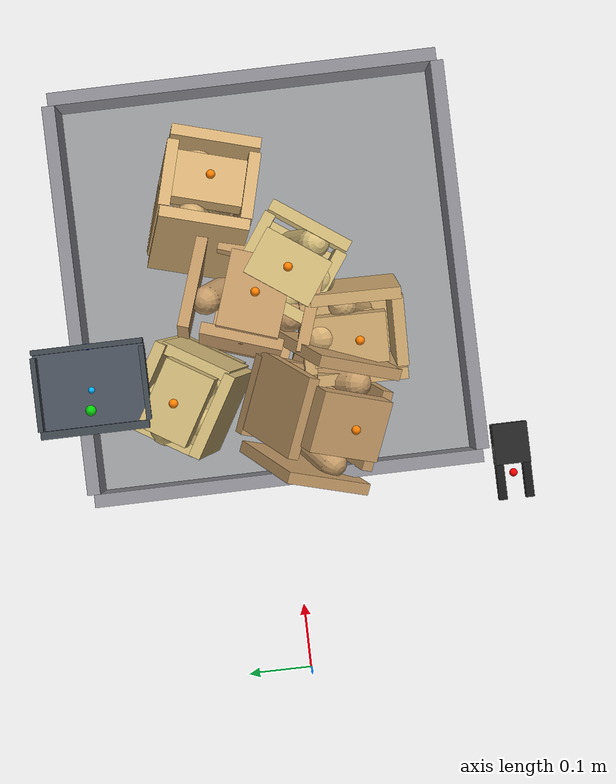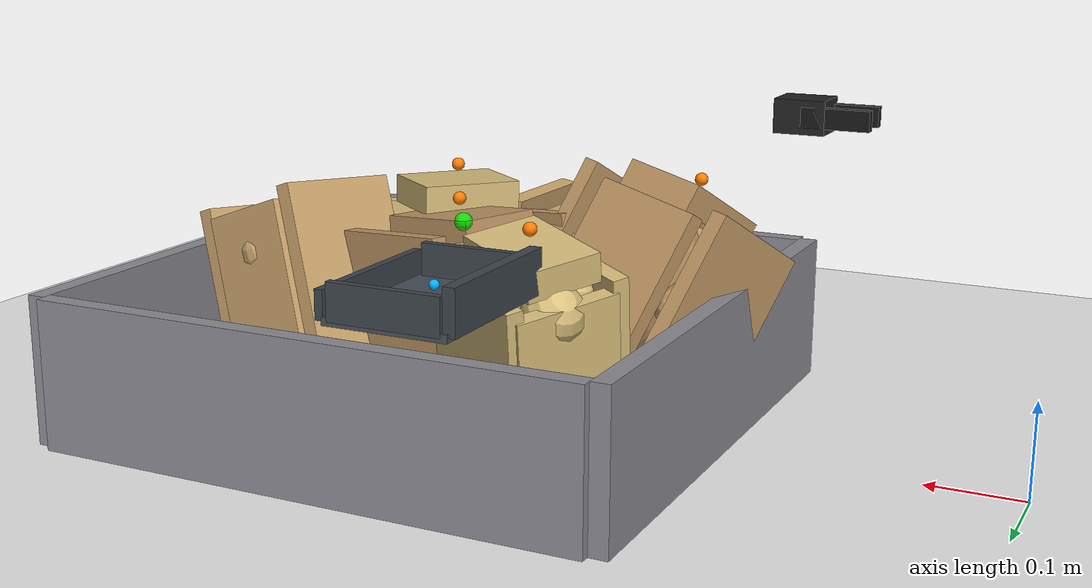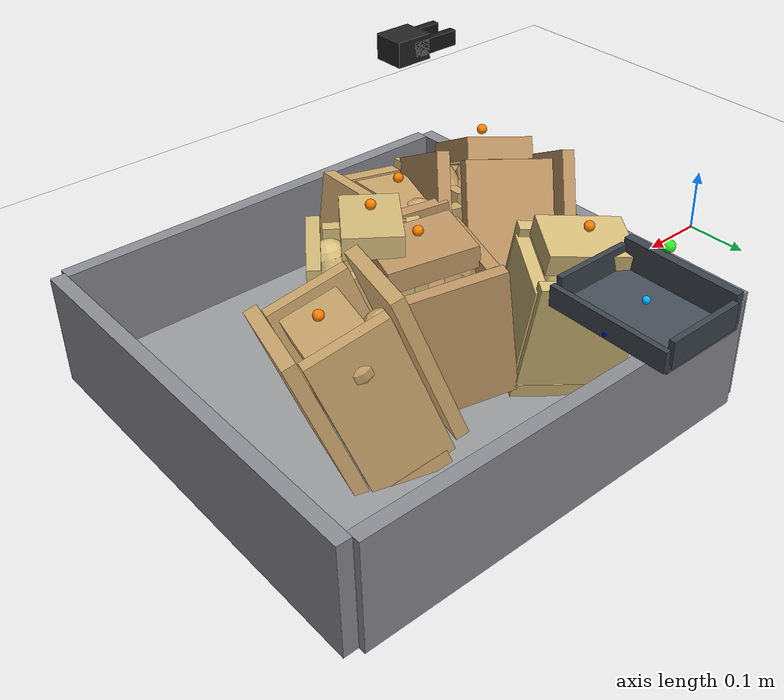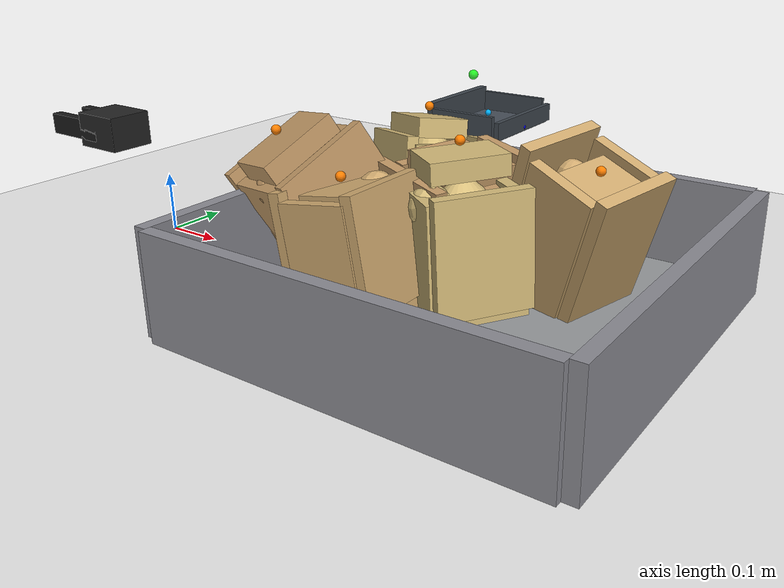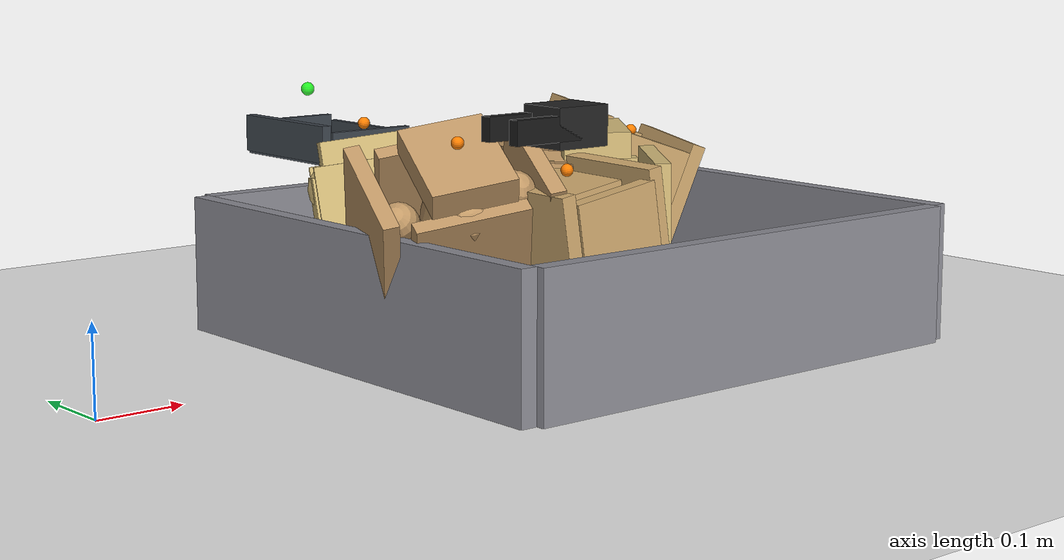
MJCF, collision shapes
<mujoco model="side_bulged_unstable_top_exposed_ep0_try0">
  <compiler angle="radian" coordinate="local" inertiafromgeom="true" meshdir="D:/Michael/2025/01.Research/01.Parceldetection/16.Pybullet/bullet3-master (1)/bullet3-master/examples/pybullet/examples/DeformableTest/Sackcodex2/object"/>
  <option timestep="0.002" gravity="0 0 -9.81" integrator="implicitfast" iterations="100" tolerance="1e-8"/>
  <size memory="768M" nconmax="12000"/>

  <visual>
    <global azimuth="128" elevation="-20"/>
    <headlight ambient="0.34 0.34 0.34" diffuse="0.78 0.78 0.78" specular="0.15 0.15 0.15"/>
    <rgba haze="0.11 0.13 0.18 1"/>
  </visual>

  <default>
    <geom condim="4" friction="1.15 0.03 0.01" margin="0.003" solimp="0.93 0.98 0.003" solref="0.012 1"/>
    <joint damping="1.2" armature="0.002"/>
    <position kp="2500" forcelimited="true" forcerange="-420 420"/>
    <motor ctrllimited="true"/>
  </default>

  <asset>
    <mesh name="sack_0_visual_mesh" file="sack9.obj" scale="0.0745 0.0745 0.0790"/>
    <mesh name="sack_1_visual_mesh" file="sack.obj" scale="0.0679 0.0679 0.0703"/>
    <mesh name="sack_2_visual_mesh" file="sack9.obj" scale="0.0753 0.0753 0.0796"/>
    <mesh name="sack_3_visual_mesh" file="sack7.obj" scale="0.0714 0.0714 0.0755"/>
    <mesh name="sack_4_visual_mesh" file="sack.obj" scale="0.0673 0.0673 0.0696"/>
    <mesh name="sack_5_visual_mesh" file="sack9.obj" scale="0.0728 0.0728 0.0793"/>
  </asset>

  <worldbody>
    <light name="key" pos="0.85 0.15 1.8" dir="-0.2 -0.1 -1" directional="true"/>
    <geom name="floor" type="plane" size="2 2 0.1" rgba="0.93 0.93 0.93 1"/>
    <geom name="work_pad" type="box" pos="0.62 0 0.012" size="0.30 0.30 0.012" rgba="0.60 0.61 0.62 1" friction="1.4 0.05 0.01"/>
    <geom name="corral_front" type="box" pos="0.93 0.00 0.08" size="0.010 0.30 0.08" rgba="0.55 0.55 0.58 0.22" friction="1.0 0.03 0.01"/>
    <geom name="corral_back" type="box" pos="0.31 0.00 0.08" size="0.010 0.30 0.08" rgba="0.55 0.55 0.58 0.18" friction="1.0 0.03 0.01"/>
    <geom name="corral_left" type="box" pos="0.62 0.30 0.08" size="0.30 0.010 0.08" rgba="0.55 0.55 0.58 0.14" friction="1.0 0.03 0.01"/>
    <geom name="corral_right" type="box" pos="0.62 -0.30 0.08" size="0.30 0.010 0.08" rgba="0.55 0.55 0.58 0.14" friction="1.0 0.03 0.01"/>
    <camera name="overview" pos="1.22 0.00 0.92" xyaxes="0 1 0 -0.46 0 0.88"/>

    <body name="gripper_mocap" mocap="true" pos="0.36 -0.33 0.30" quat="0.707107 0 -0.707107 0"/>
    <body name="scoop_mocap" mocap="true" pos="0.42 0.28 0.20" quat="1 0 0 0"/>

    <body name="gripper_ctrl_base" pos="0.36 -0.33 0.30">
      <inertial pos="0 0 0" mass="0.001" diaginertia="1e-6 1e-6 1e-6"/>
      <joint name="gripper_ctrl_x" type="slide" axis="1 0 0" limited="true" range="0.20 1.00"/>
      <body name="gripper_ctrl_y_body">
        <inertial pos="0 0 0" mass="0.001" diaginertia="1e-6 1e-6 1e-6"/>
        <joint name="gripper_ctrl_y" type="slide" axis="0 1 0" limited="true" range="-0.60 0.60"/>
        <body name="gripper_ctrl_z_body">
          <inertial pos="0 0 0" mass="0.001" diaginertia="1e-6 1e-6 1e-6"/>
          <joint name="gripper_ctrl_z" type="slide" axis="0 0 1" limited="true" range="0.04 0.70"/>
          <body name="gripper_ctrl_yaw_body">
            <inertial pos="0 0 0" mass="0.001" diaginertia="1e-6 1e-6 1e-6"/>
            <joint name="gripper_ctrl_yaw" type="hinge" axis="0 0 1" limited="true" range="-3.1416 3.1416"/>
            <body name="gripper_ctrl_pitch_body">
              <inertial pos="0 0 0" mass="0.001" diaginertia="1e-6 1e-6 1e-6"/>
              <joint name="gripper_ctrl_pitch" type="hinge" axis="0 1 0" limited="true" range="-3.1416 3.1416"/>
              <body name="gripper_ctrl_roll_body">
                <inertial pos="0 0 0" mass="0.001" diaginertia="1e-6 1e-6 1e-6"/>
                <joint name="gripper_ctrl_roll" type="hinge" axis="1 0 0" limited="true" range="-3.1416 3.1416"/>
              </body>
            </body>
          </body>
        </body>
      </body>
    </body>

    <body name="scoop_ctrl_base" pos="0.42 0.28 0.20">
      <inertial pos="0 0 0" mass="0.001" diaginertia="1e-6 1e-6 1e-6"/>
      <joint name="scoop_ctrl_x" type="slide" axis="1 0 0" limited="true" range="0.20 1.00"/>
      <body name="scoop_ctrl_y_body">
        <inertial pos="0 0 0" mass="0.001" diaginertia="1e-6 1e-6 1e-6"/>
        <joint name="scoop_ctrl_y" type="slide" axis="0 1 0" limited="true" range="-0.60 0.60"/>
        <body name="scoop_ctrl_z_body">
          <inertial pos="0 0 0" mass="0.001" diaginertia="1e-6 1e-6 1e-6"/>
          <joint name="scoop_ctrl_z" type="slide" axis="0 0 1" limited="true" range="0.04 0.70"/>
          <body name="scoop_ctrl_yaw_body">
            <inertial pos="0 0 0" mass="0.001" diaginertia="1e-6 1e-6 1e-6"/>
            <joint name="scoop_ctrl_yaw" type="hinge" axis="0 0 1" limited="true" range="-3.1416 3.1416"/>
            <body name="scoop_ctrl_pitch_body">
              <inertial pos="0 0 0" mass="0.001" diaginertia="1e-6 1e-6 1e-6"/>
              <joint name="scoop_ctrl_pitch" type="hinge" axis="0 1 0" limited="true" range="-3.1416 3.1416"/>
              <body name="scoop_ctrl_roll_body">
                <inertial pos="0 0 0" mass="0.001" diaginertia="1e-6 1e-6 1e-6"/>
                <joint name="scoop_ctrl_roll" type="hinge" axis="1 0 0" limited="true" range="-3.1416 3.1416"/>
              </body>
            </body>
          </body>
        </body>
      </body>
    </body>

    <body name="gripper_tool" pos="0.36 -0.33 0.30" quat="0.707107 0 -0.707107 0">
      <freejoint name="gripper_tool_free"/>
      <inertial pos="0 0 0.04" mass="0.08" diaginertia="0.0002 0.0002 0.0002"/>
      <geom name="gripper_palm" type="box" pos="0 0 0.030" size="0.020 0.026 0.030" rgba="0.14 0.14 0.14 1"/>
      <body name="left_finger_body" pos="0 0 0.072">
        <joint name="left_finger_slide" type="slide" axis="0 1 0" limited="true" range="0.010 0.040" damping="12"/>
        <geom name="left_finger_geom" type="box" pos="0 0.020 0" size="0.012 0.006 0.040" rgba="0.10 0.10 0.10 1" friction="2.2 0.05 0.01"/>
      </body>
      <body name="right_finger_body" pos="0 0 0.072">
        <joint name="right_finger_slide" type="slide" axis="0 -1 0" limited="true" range="0.010 0.040" damping="12"/>
        <geom name="right_finger_geom" type="box" pos="0 -0.020 0" size="0.012 0.006 0.040" rgba="0.10 0.10 0.10 1" friction="2.2 0.05 0.01"/>
      </body>
      <site name="gripper_pinch_site" pos="0 0 0.074" size="0.006" rgba="1 0 0 1"/>
    </body>

    <body name="scoop_tool" pos="0.42 0.28 0.20" quat="1 0 0 0">
      <freejoint name="scoop_tool_free"/>
      <inertial pos="0 0 0.02" mass="0.10" diaginertia="0.0003 0.0003 0.0003"/>
      <geom name="scoop_plate" type="box" pos="0.062 0 0" size="0.062 0.085 0.004" rgba="0.28 0.31 0.35 1" friction="1.7 0.05 0.01"/>
      <geom name="scoop_lip" type="box" pos="0.126 0 0.014" size="0.004 0.085 0.014" rgba="0.24 0.27 0.30 1" friction="1.7 0.05 0.01"/>
      <geom name="scoop_left_rail" type="box" pos="0.062 0.082 0.018" size="0.056 0.004 0.018" rgba="0.24 0.27 0.30 1"/>
      <geom name="scoop_right_rail" type="box" pos="0.062 -0.082 0.018" size="0.056 0.004 0.018" rgba="0.24 0.27 0.30 1"/>
      <geom name="scoop_backstop" type="box" pos="0.000 0 0.022" size="0.006 0.082 0.022" rgba="0.24 0.27 0.30 1"/>
      <site name="scoop_tip_site" pos="0.126 0 0.005" size="0.005" rgba="0 0 1 1"/>
      <site name="scoop_center_site" pos="0.060 0 0.020" size="0.005" rgba="0 0.7 1 1"/>
      <site name="score_overlay_site" pos="0.030 0 0.080" size="0.008" rgba="0 1 0 0.8"/>
    </body>

    <body name="sack_0" pos="0.5885 0.0286 0.1165" euler="0.0438 0.0895 2.8121">
      <freejoint name="sack_0_free"/>

      <geom name="sack_0_visual" type="mesh" mesh="sack_0_visual_mesh" rgba="0.760 0.600 0.400 0.92" contype="0" conaffinity="0"/>
      <site name="sack_0_center_site" pos="0 0 0.000" size="0.006" rgba="0 1 0 1"/>
      <site name="sack_0_top_site" pos="0 0.0060 0.1237" size="0.007" rgba="1 0.5 0 1"/>
      <site name="sack_0_side_site" pos="0.0000 0.0581 0.018" size="0.007" rgba="1 0.8 0 1"/>

      <geom name="sack_0_core_geom" type="ellipsoid" pos="0 0 0.0059" size="0.0449 0.0352 0.0790" mass="0.8571" rgba="0.760 0.600 0.400 0.12" friction="1.0 0.03 0.01"/>
      <geom name="sack_0_core_front" type="capsule" fromto="-0.0200 0 -0.0200 0.0450 0 0.0600" size="0.0307" mass="0.2041" rgba="0.760 0.600 0.400 0.10"/>
      <geom name="sack_0_core_left" type="capsule" fromto="-0.008 0.0455 -0.010 0.018 0.0635 0.060" size="0.0243" mass="0.3673" rgba="0.760 0.600 0.400 0.10"/>
      <geom name="sack_0_core_right" type="capsule" fromto="-0.006 -0.0455 -0.008 0.020 -0.0655 0.054" size="0.0223" mass="0.3673" rgba="0.760 0.600 0.400 0.10"/>

      <body name="sack_0_bottom_support_proxy_body" pos="0 0.0149 -0.0921">
        <joint name="sack_0_bottom_x" type="slide" axis="1 0 0" limited="true" range="-0.012 0.012" damping="18" stiffness="480.8"/>
        <joint name="sack_0_bottom_y" type="slide" axis="0 1 0" limited="true" range="-0.012 0.012" damping="18" stiffness="480.8"/>
        <joint name="sack_0_bottom_z" type="slide" axis="0 0 1" limited="true" range="-0.008 0.020" damping="24" stiffness="592.1"/>
        <geom name="sack_0_bottom_support_proxy" type="box" size="0.0757 0.0641 0.0100" mass="0.1633" rgba="0.760 0.600 0.400 0.34" friction="1.55 0.05 0.01"/>
      </body>

      <body name="sack_0_top_grasp_proxy_body" pos="0.0000 0.0060 0.0937">
        <joint name="sack_0_top_x" type="slide" axis="1 0 0" limited="true" range="-0.018 0.018" damping="12" stiffness="184.8"/>
        <joint name="sack_0_top_y" type="slide" axis="0 1 0" limited="true" range="-0.018 0.018" damping="12" stiffness="184.8"/>
        <joint name="sack_0_top_z" type="slide" axis="0 0 1" limited="true" range="-0.040 0.010" damping="14" stiffness="136.9"/>
        <geom name="sack_0_top_grasp_proxy" type="box" size="0.0597 0.0481 0.0150" mass="0.1224" rgba="0.760 0.600 0.400 0.26" friction="2.2 0.05 0.01"/>
      </body>

      <body name="sack_0_left_side_proxy_body" pos="0 0.0936 0.010">
        <joint name="sack_0_left_side_slide" type="slide" axis="0 -1 0" limited="true" range="-0.028 0.016" damping="16" stiffness="243.4"/>
        <geom name="sack_0_left_side_proxy" type="box" size="0.0717 0.0090 0.0901" mass="0.1224" rgba="0.760 0.600 0.400 0.24"/>
      </body>

      <body name="sack_0_right_side_proxy_body" pos="0 -0.0896 0.010">
        <joint name="sack_0_right_side_slide" type="slide" axis="0 1 0" limited="true" range="-0.028 0.016" damping="16" stiffness="225.6"/>
        <geom name="sack_0_right_side_proxy" type="box" size="0.0717 0.0090 0.0901" mass="0.1224" rgba="0.760 0.600 0.400 0.24"/>
      </body>

      <body name="sack_0_front_proxy_body" pos="0.0657 0 0.000">
        <joint name="sack_0_front_slide" type="slide" axis="-1 0 0" limited="true" range="-0.022 0.012" damping="15" stiffness="230.4"/>
        <geom name="sack_0_front_support_proxy" type="box" size="0.0090 0.0641 0.0881" mass="0.1020" rgba="0.760 0.600 0.400 0.22"/>
      </body>

      <body name="sack_0_back_proxy_body" pos="-0.0657 0 0.000">
        <joint name="sack_0_back_slide" type="slide" axis="1 0 0" limited="true" range="-0.022 0.012" damping="15" stiffness="212.6"/>
        <geom name="sack_0_back_support_proxy" type="box" size="0.0090 0.0641 0.0881" mass="0.1020" rgba="0.760 0.600 0.400 0.22"/>
      </body>

      <body name="sack_0_shape_proxy_body" pos="0.0000 0.0375 0.0331">
        <joint name="sack_0_bulge_y" type="slide" axis="0 1 0" limited="true" range="-0.020 0.020" damping="8" stiffness="86.1"/>
        <joint name="sack_0_bulge_z" type="slide" axis="0 0 1" limited="true" range="-0.014 0.028" damping="8" stiffness="89.6"/>
        <geom name="sack_0_shape_proxy" type="ellipsoid" size="0.0203 0.0165 0.0261" mass="0.0816" rgba="0.760 0.600 0.400 0.28"/>
      </body>
    </body>

    <body name="sack_1" pos="0.7439 0.0823 0.1242" euler="0.1705 0.3042 1.2836">
      <freejoint name="sack_1_free"/>

      <geom name="sack_1_visual" type="mesh" mesh="sack_1_visual_mesh" rgba="0.820 0.670 0.440 0.92" contype="0" conaffinity="0"/>
      <site name="sack_1_center_site" pos="0 0 0.000" size="0.006" rgba="0 1 0 1"/>
      <site name="sack_1_top_site" pos="0 -0.0060 0.1087" size="0.007" rgba="1 0.5 0 1"/>
      <site name="sack_1_side_site" pos="0.0000 -0.0487 0.018" size="0.007" rgba="1 0.8 0 1"/>

      <geom name="sack_1_core_geom" type="ellipsoid" pos="0 0 0.0057" size="0.0453 0.0353 0.0673" mass="0.6934" rgba="0.820 0.670 0.440 0.12" friction="1.0 0.03 0.01"/>
      <geom name="sack_1_core_front" type="capsule" fromto="-0.0200 0 -0.0200 0.0450 0 0.0600" size="0.0299" mass="0.1651" rgba="0.820 0.670 0.440 0.10"/>
      <geom name="sack_1_core_left" type="capsule" fromto="-0.008 0.0308 -0.010 0.018 0.0488 0.060" size="0.0241" mass="0.2972" rgba="0.820 0.670 0.440 0.10"/>
      <geom name="sack_1_core_right" type="capsule" fromto="-0.006 -0.0308 -0.008 0.020 -0.0508 0.054" size="0.0221" mass="0.2972" rgba="0.820 0.670 0.440 0.10"/>

      <body name="sack_1_bottom_support_proxy_body" pos="0 -0.0103 -0.1109">
        <joint name="sack_1_bottom_x" type="slide" axis="1 0 0" limited="true" range="-0.012 0.012" damping="18" stiffness="455.8"/>
        <joint name="sack_1_bottom_y" type="slide" axis="0 1 0" limited="true" range="-0.012 0.012" damping="18" stiffness="455.8"/>
        <joint name="sack_1_bottom_z" type="slide" axis="0 0 1" limited="true" range="-0.008 0.020" damping="24" stiffness="561.5"/>
        <geom name="sack_1_bottom_support_proxy" type="box" size="0.0728 0.0547 0.0100" mass="0.1321" rgba="0.820 0.670 0.440 0.34" friction="1.55 0.05 0.01"/>
      </body>

      <body name="sack_1_top_grasp_proxy_body" pos="0.0000 -0.0060 0.0787">
        <joint name="sack_1_top_x" type="slide" axis="1 0 0" limited="true" range="-0.018 0.018" damping="12" stiffness="175.0"/>
        <joint name="sack_1_top_y" type="slide" axis="0 1 0" limited="true" range="-0.018 0.018" damping="12" stiffness="175.0"/>
        <joint name="sack_1_top_z" type="slide" axis="0 0 1" limited="true" range="-0.040 0.010" damping="14" stiffness="128.6"/>
        <geom name="sack_1_top_grasp_proxy" type="box" size="0.0568 0.0387 0.0150" mass="0.0991" rgba="0.820 0.670 0.440 0.26" friction="2.2 0.05 0.01"/>
      </body>

      <body name="sack_1_left_side_proxy_body" pos="0 0.0695 0.010">
        <joint name="sack_1_left_side_slide" type="slide" axis="0 -1 0" limited="true" range="-0.028 0.016" damping="16" stiffness="226.0"/>
        <geom name="sack_1_left_side_proxy" type="box" size="0.0688 0.0090 0.1089" mass="0.0991" rgba="0.820 0.670 0.440 0.24"/>
      </body>

      <body name="sack_1_right_side_proxy_body" pos="0 -0.0655 0.010">
        <joint name="sack_1_right_side_slide" type="slide" axis="0 1 0" limited="true" range="-0.028 0.016" damping="16" stiffness="209.6"/>
        <geom name="sack_1_right_side_proxy" type="box" size="0.0688 0.0090 0.1089" mass="0.0991" rgba="0.820 0.670 0.440 0.24"/>
      </body>

      <body name="sack_1_front_proxy_body" pos="0.0628 0 0.000">
        <joint name="sack_1_front_slide" type="slide" axis="-1 0 0" limited="true" range="-0.022 0.012" damping="15" stiffness="217.9"/>
        <geom name="sack_1_front_support_proxy" type="box" size="0.0090 0.0547 0.1069" mass="0.0826" rgba="0.820 0.670 0.440 0.22"/>
      </body>

      <body name="sack_1_back_proxy_body" pos="-0.0628 0 0.000">
        <joint name="sack_1_back_slide" type="slide" axis="1 0 0" limited="true" range="-0.022 0.012" damping="15" stiffness="201.4"/>
        <geom name="sack_1_back_support_proxy" type="box" size="0.0090 0.0547 0.1069" mass="0.0826" rgba="0.820 0.670 0.440 0.22"/>
      </body>

      <body name="sack_1_shape_proxy_body" pos="0.0000 -0.0228 0.0414">
        <joint name="sack_1_bulge_y" type="slide" axis="0 1 0" limited="true" range="-0.020 0.020" damping="8" stiffness="102.8"/>
        <joint name="sack_1_bulge_z" type="slide" axis="0 0 1" limited="true" range="-0.014 0.028" damping="8" stiffness="102.1"/>
        <geom name="sack_1_shape_proxy" type="ellipsoid" size="0.0201 0.0162 0.0263" mass="0.0660" rgba="0.820 0.670 0.440 0.28"/>
      </body>
    </body>

    <body name="sack_2" pos="0.4081 -0.0541 0.1465" euler="0.4397 -0.3139 -1.8385">
      <freejoint name="sack_2_free"/>

      <geom name="sack_2_visual" type="mesh" mesh="sack_2_visual_mesh" rgba="0.760 0.600 0.400 0.92" contype="0" conaffinity="0"/>
      <site name="sack_2_center_site" pos="0 0 0.000" size="0.006" rgba="0 1 0 1"/>
      <site name="sack_2_top_site" pos="0 0.0060 0.1279" size="0.007" rgba="1 0.5 0 1"/>
      <site name="sack_2_side_site" pos="0.0000 0.0576 0.018" size="0.007" rgba="1 0.8 0 1"/>

      <geom name="sack_2_core_geom" type="ellipsoid" pos="0 0 0.0059" size="0.0448 0.0351 0.0787" mass="0.9445" rgba="0.760 0.600 0.400 0.12" friction="1.0 0.03 0.01"/>
      <geom name="sack_2_core_front" type="capsule" fromto="-0.0200 0 -0.0200 0.0450 0 0.0600" size="0.0305" mass="0.2249" rgba="0.760 0.600 0.400 0.10"/>
      <geom name="sack_2_core_left" type="capsule" fromto="-0.008 0.0460 -0.010 0.018 0.0640 0.060" size="0.0243" mass="0.4048" rgba="0.760 0.600 0.400 0.10"/>
      <geom name="sack_2_core_right" type="capsule" fromto="-0.006 -0.0460 -0.008 0.020 -0.0660 0.054" size="0.0223" mass="0.4048" rgba="0.760 0.600 0.400 0.10"/>

      <body name="sack_2_bottom_support_proxy_body" pos="0 -0.0089 -0.0858">
        <joint name="sack_2_bottom_x" type="slide" axis="1 0 0" limited="true" range="-0.012 0.012" damping="18" stiffness="475.8"/>
        <joint name="sack_2_bottom_y" type="slide" axis="0 1 0" limited="true" range="-0.012 0.012" damping="18" stiffness="475.8"/>
        <joint name="sack_2_bottom_z" type="slide" axis="0 0 1" limited="true" range="-0.008 0.020" damping="24" stiffness="586.0"/>
        <geom name="sack_2_bottom_support_proxy" type="box" size="0.0755 0.0636 0.0100" mass="0.1799" rgba="0.760 0.600 0.400 0.34" friction="1.55 0.05 0.01"/>
      </body>

      <body name="sack_2_top_grasp_proxy_body" pos="0.0000 0.0060 0.0979">
        <joint name="sack_2_top_x" type="slide" axis="1 0 0" limited="true" range="-0.018 0.018" damping="12" stiffness="182.8"/>
        <joint name="sack_2_top_y" type="slide" axis="0 1 0" limited="true" range="-0.018 0.018" damping="12" stiffness="182.8"/>
        <joint name="sack_2_top_z" type="slide" axis="0 0 1" limited="true" range="-0.040 0.010" damping="14" stiffness="135.3"/>
        <geom name="sack_2_top_grasp_proxy" type="box" size="0.0595 0.0476 0.0150" mass="0.1349" rgba="0.760 0.600 0.400 0.26" friction="2.2 0.05 0.01"/>
      </body>

      <body name="sack_2_left_side_proxy_body" pos="0 0.0936 0.010">
        <joint name="sack_2_left_side_slide" type="slide" axis="0 -1 0" limited="true" range="-0.028 0.016" damping="16" stiffness="240.1"/>
        <geom name="sack_2_left_side_proxy" type="box" size="0.0715 0.0090 0.0838" mass="0.1349" rgba="0.760 0.600 0.400 0.24"/>
      </body>

      <body name="sack_2_right_side_proxy_body" pos="0 -0.0896 0.010">
        <joint name="sack_2_right_side_slide" type="slide" axis="0 1 0" limited="true" range="-0.028 0.016" damping="16" stiffness="222.6"/>
        <geom name="sack_2_right_side_proxy" type="box" size="0.0715 0.0090 0.0838" mass="0.1349" rgba="0.760 0.600 0.400 0.24"/>
      </body>

      <body name="sack_2_front_proxy_body" pos="0.0655 0 0.000">
        <joint name="sack_2_front_slide" type="slide" axis="-1 0 0" limited="true" range="-0.022 0.012" damping="15" stiffness="227.9"/>
        <geom name="sack_2_front_support_proxy" type="box" size="0.0090 0.0636 0.0818" mass="0.1124" rgba="0.760 0.600 0.400 0.22"/>
      </body>

      <body name="sack_2_back_proxy_body" pos="-0.0655 0 0.000">
        <joint name="sack_2_back_slide" type="slide" axis="1 0 0" limited="true" range="-0.022 0.012" damping="15" stiffness="210.4"/>
        <geom name="sack_2_back_support_proxy" type="box" size="0.0090 0.0636 0.0818" mass="0.1124" rgba="0.760 0.600 0.400 0.22"/>
      </body>

      <body name="sack_2_shape_proxy_body" pos="0.0000 0.0380 0.0347">
        <joint name="sack_2_bulge_y" type="slide" axis="0 1 0" limited="true" range="-0.020 0.020" damping="8" stiffness="89.5"/>
        <joint name="sack_2_bulge_z" type="slide" axis="0 0 1" limited="true" range="-0.014 0.028" damping="8" stiffness="92.1"/>
        <geom name="sack_2_shape_proxy" type="ellipsoid" size="0.0203 0.0165 0.0261" mass="0.0900" rgba="0.760 0.600 0.400 0.28"/>
      </body>
    </body>

    <body name="sack_3" pos="0.6372 -0.0374 0.1223" euler="0.0123 -0.0299 -2.1861">
      <freejoint name="sack_3_free"/>

      <geom name="sack_3_visual" type="mesh" mesh="sack_3_visual_mesh" rgba="0.840 0.740 0.480 0.92" contype="0" conaffinity="0"/>
      <site name="sack_3_center_site" pos="0 0 0.000" size="0.006" rgba="0 1 0 1"/>
      <site name="sack_3_top_site" pos="0 -0.0060 0.1428" size="0.007" rgba="1 0.5 0 1"/>
      <site name="sack_3_side_site" pos="0.0000 -0.0482 0.018" size="0.007" rgba="1 0.8 0 1"/>

      <geom name="sack_3_core_geom" type="ellipsoid" pos="0 0 0.0059" size="0.0498 0.0414 0.0881" mass="1.0096" rgba="0.840 0.740 0.480 0.12" friction="1.0 0.03 0.01"/>
      <geom name="sack_3_core_front" type="capsule" fromto="-0.0200 0 -0.0200 0.0450 0 0.0600" size="0.0306" mass="0.2404" rgba="0.840 0.740 0.480 0.10"/>
      <geom name="sack_3_core_left" type="capsule" fromto="-0.008 0.0280 -0.010 0.018 0.0460 0.060" size="0.0241" mass="0.4327" rgba="0.840 0.740 0.480 0.10"/>
      <geom name="sack_3_core_right" type="capsule" fromto="-0.006 -0.0280 -0.008 0.020 -0.0480 0.054" size="0.0221" mass="0.4327" rgba="0.840 0.740 0.480 0.10"/>

      <body name="sack_3_bottom_support_proxy_body" pos="0 -0.0042 -0.0847">
        <joint name="sack_3_bottom_x" type="slide" axis="1 0 0" limited="true" range="-0.012 0.012" damping="18" stiffness="478.4"/>
        <joint name="sack_3_bottom_y" type="slide" axis="0 1 0" limited="true" range="-0.012 0.012" damping="18" stiffness="478.4"/>
        <joint name="sack_3_bottom_z" type="slide" axis="0 0 1" limited="true" range="-0.008 0.020" damping="24" stiffness="589.2"/>
        <geom name="sack_3_bottom_support_proxy" type="box" size="0.0715 0.0542 0.0100" mass="0.1923" rgba="0.840 0.740 0.480 0.34" friction="1.55 0.05 0.01"/>
      </body>

      <body name="sack_3_top_grasp_proxy_body" pos="0.0000 -0.0060 0.1128">
        <joint name="sack_3_top_x" type="slide" axis="1 0 0" limited="true" range="-0.018 0.018" damping="12" stiffness="183.8"/>
        <joint name="sack_3_top_y" type="slide" axis="0 1 0" limited="true" range="-0.018 0.018" damping="12" stiffness="183.8"/>
        <joint name="sack_3_top_z" type="slide" axis="0 0 1" limited="true" range="-0.040 0.010" damping="14" stiffness="136.1"/>
        <geom name="sack_3_top_grasp_proxy" type="box" size="0.0555 0.0382 0.0150" mass="0.1442" rgba="0.840 0.740 0.480 0.26" friction="2.2 0.05 0.01"/>
      </body>

      <body name="sack_3_left_side_proxy_body" pos="0 0.0662 0.010">
        <joint name="sack_3_left_side_slide" type="slide" axis="0 -1 0" limited="true" range="-0.028 0.016" damping="16" stiffness="242.1"/>
        <geom name="sack_3_left_side_proxy" type="box" size="0.0675 0.0090 0.0827" mass="0.1442" rgba="0.840 0.740 0.480 0.24"/>
      </body>

      <body name="sack_3_right_side_proxy_body" pos="0 -0.0622 0.010">
        <joint name="sack_3_right_side_slide" type="slide" axis="0 1 0" limited="true" range="-0.028 0.016" damping="16" stiffness="224.4"/>
        <geom name="sack_3_right_side_proxy" type="box" size="0.0675 0.0090 0.0827" mass="0.1442" rgba="0.840 0.740 0.480 0.24"/>
      </body>

      <body name="sack_3_front_proxy_body" pos="0.0615 0 0.000">
        <joint name="sack_3_front_slide" type="slide" axis="-1 0 0" limited="true" range="-0.022 0.012" damping="15" stiffness="229.2"/>
        <geom name="sack_3_front_support_proxy" type="box" size="0.0090 0.0542 0.0807" mass="0.1202" rgba="0.840 0.740 0.480 0.22"/>
      </body>

      <body name="sack_3_back_proxy_body" pos="-0.0615 0 0.000">
        <joint name="sack_3_back_slide" type="slide" axis="1 0 0" limited="true" range="-0.022 0.012" damping="15" stiffness="211.5"/>
        <geom name="sack_3_back_support_proxy" type="box" size="0.0090 0.0542 0.0807" mass="0.1202" rgba="0.840 0.740 0.480 0.22"/>
      </body>

      <body name="sack_3_shape_proxy_body" pos="0.0000 -0.0200 0.0339">
        <joint name="sack_3_bulge_y" type="slide" axis="0 1 0" limited="true" range="-0.020 0.020" damping="8" stiffness="87.7"/>
        <joint name="sack_3_bulge_z" type="slide" axis="0 0 1" limited="true" range="-0.014 0.028" damping="8" stiffness="90.8"/>
        <geom name="sack_3_shape_proxy" type="ellipsoid" size="0.0201 0.0162 0.0261" mass="0.0962" rgba="0.840 0.740 0.480 0.28"/>
      </body>
    </body>

    <body name="sack_4" pos="0.5283 -0.1304 0.1243" euler="0.0070 -0.1619 1.5534">
      <freejoint name="sack_4_free"/>

      <geom name="sack_4_visual" type="mesh" mesh="sack_4_visual_mesh" rgba="0.820 0.670 0.440 0.92" contype="0" conaffinity="0"/>
      <site name="sack_4_center_site" pos="0 0 0.000" size="0.006" rgba="0 1 0 1"/>
      <site name="sack_4_top_site" pos="0 0.0060 0.0974" size="0.007" rgba="1 0.5 0 1"/>
      <site name="sack_4_side_site" pos="0.0140 0.0484 0.018" size="0.007" rgba="1 0.8 0 1"/>

      <geom name="sack_4_core_geom" type="ellipsoid" pos="0 0 0.0057" size="0.0453 0.0353 0.0673" mass="0.8241" rgba="0.820 0.670 0.440 0.12" friction="1.0 0.03 0.01"/>
      <geom name="sack_4_core_front" type="capsule" fromto="-0.0060 0 -0.0200 0.0590 0 0.0600" size="0.0298" mass="0.1962" rgba="0.820 0.670 0.440 0.10"/>
      <geom name="sack_4_core_left" type="capsule" fromto="-0.008 0.0251 -0.010 0.018 0.0431 0.060" size="0.0241" mass="0.3532" rgba="0.820 0.670 0.440 0.10"/>
      <geom name="sack_4_core_right" type="capsule" fromto="-0.006 -0.0251 -0.008 0.020 -0.0451 0.054" size="0.0221" mass="0.3532" rgba="0.820 0.670 0.440 0.10"/>

      <body name="sack_4_bottom_support_proxy_body" pos="0 -0.0064 -0.0837">
        <joint name="sack_4_bottom_x" type="slide" axis="1 0 0" limited="true" range="-0.012 0.012" damping="18" stiffness="455.2"/>
        <joint name="sack_4_bottom_y" type="slide" axis="0 1 0" limited="true" range="-0.012 0.012" damping="18" stiffness="455.2"/>
        <joint name="sack_4_bottom_z" type="slide" axis="0 0 1" limited="true" range="-0.008 0.020" damping="24" stiffness="560.8"/>
        <geom name="sack_4_bottom_support_proxy" type="box" size="0.0728 0.0544 0.0100" mass="0.1570" rgba="0.820 0.670 0.440 0.34" friction="1.55 0.05 0.01"/>
      </body>

      <body name="sack_4_top_grasp_proxy_body" pos="0.0140 0.0060 0.0674">
        <joint name="sack_4_top_x" type="slide" axis="1 0 0" limited="true" range="-0.018 0.018" damping="12" stiffness="174.8"/>
        <joint name="sack_4_top_y" type="slide" axis="0 1 0" limited="true" range="-0.018 0.018" damping="12" stiffness="174.8"/>
        <joint name="sack_4_top_z" type="slide" axis="0 0 1" limited="true" range="-0.040 0.010" damping="14" stiffness="128.4"/>
        <geom name="sack_4_top_grasp_proxy" type="box" size="0.0568 0.0384 0.0150" mass="0.1177" rgba="0.820 0.670 0.440 0.26" friction="2.2 0.05 0.01"/>
      </body>

      <body name="sack_4_left_side_proxy_body" pos="0 0.0635 0.010">
        <joint name="sack_4_left_side_slide" type="slide" axis="0 -1 0" limited="true" range="-0.028 0.016" damping="16" stiffness="225.7"/>
        <geom name="sack_4_left_side_proxy" type="box" size="0.0688 0.0090 0.0817" mass="0.1177" rgba="0.820 0.670 0.440 0.24"/>
      </body>

      <body name="sack_4_right_side_proxy_body" pos="0 -0.0595 0.010">
        <joint name="sack_4_right_side_slide" type="slide" axis="0 1 0" limited="true" range="-0.028 0.016" damping="16" stiffness="209.3"/>
        <geom name="sack_4_right_side_proxy" type="box" size="0.0688 0.0090 0.0817" mass="0.1177" rgba="0.820 0.670 0.440 0.24"/>
      </body>

      <body name="sack_4_front_proxy_body" pos="0.0768 0 0.000">
        <joint name="sack_4_front_slide" type="slide" axis="-1 0 0" limited="true" range="-0.022 0.012" damping="15" stiffness="217.6"/>
        <geom name="sack_4_front_support_proxy" type="box" size="0.0090 0.0544 0.0797" mass="0.0981" rgba="0.820 0.670 0.440 0.22"/>
      </body>

      <body name="sack_4_back_proxy_body" pos="-0.0628 0 0.000">
        <joint name="sack_4_back_slide" type="slide" axis="1 0 0" limited="true" range="-0.022 0.012" damping="15" stiffness="201.2"/>
        <geom name="sack_4_back_support_proxy" type="box" size="0.0090 0.0544 0.0797" mass="0.0981" rgba="0.820 0.670 0.440 0.22"/>
      </body>

      <body name="sack_4_shape_proxy_body" pos="0.0084 0.0171 0.0416">
        <joint name="sack_4_bulge_y" type="slide" axis="0 1 0" limited="true" range="-0.020 0.020" damping="8" stiffness="103.2"/>
        <joint name="sack_4_bulge_z" type="slide" axis="0 0 1" limited="true" range="-0.014 0.028" damping="8" stiffness="102.4"/>
        <geom name="sack_4_shape_proxy" type="ellipsoid" size="0.0201 0.0161 0.0263" mass="0.0785" rgba="0.820 0.670 0.440 0.28"/>
      </body>
    </body>

    <body name="sack_5" pos="0.4541 0.1399 0.1204" euler="-0.1827 -0.0416 2.5943">
      <freejoint name="sack_5_free"/>

      <geom name="sack_5_visual" type="mesh" mesh="sack_5_visual_mesh" rgba="0.840 0.740 0.480 0.92" contype="0" conaffinity="0"/>
      <site name="sack_5_center_site" pos="0 0 0.000" size="0.006" rgba="0 1 0 1"/>
      <site name="sack_5_top_site" pos="0 0.0060 0.1306" size="0.007" rgba="1 0.5 0 1"/>
      <site name="sack_5_side_site" pos="0.0000 0.0505 0.018" size="0.007" rgba="1 0.8 0 1"/>

      <geom name="sack_5_core_geom" type="ellipsoid" pos="0 0 0.0060" size="0.0507 0.0427 0.0904" mass="1.1465" rgba="0.840 0.740 0.480 0.12" friction="1.0 0.03 0.01"/>
      <geom name="sack_5_core_front" type="capsule" fromto="-0.0200 0 -0.0200 0.0450 0 0.0600" size="0.0317" mass="0.2730" rgba="0.840 0.740 0.480 0.10"/>
      <geom name="sack_5_core_left" type="capsule" fromto="-0.008 0.0200 -0.010 0.018 0.0380 0.060" size="0.0240" mass="0.4913" rgba="0.840 0.740 0.480 0.10"/>
      <geom name="sack_5_core_right" type="capsule" fromto="-0.006 -0.0200 -0.008 0.020 -0.0400 0.054" size="0.0220" mass="0.4913" rgba="0.840 0.740 0.480 0.10"/>

      <body name="sack_5_bottom_support_proxy_body" pos="0 -0.0084 -0.0804">
        <joint name="sack_5_bottom_x" type="slide" axis="1 0 0" limited="true" range="-0.012 0.012" damping="18" stiffness="509.8"/>
        <joint name="sack_5_bottom_y" type="slide" axis="0 1 0" limited="true" range="-0.012 0.012" damping="18" stiffness="509.8"/>
        <joint name="sack_5_bottom_z" type="slide" axis="0 0 1" limited="true" range="-0.008 0.020" damping="24" stiffness="627.5"/>
        <geom name="sack_5_bottom_support_proxy" type="box" size="0.0725 0.0565 0.0100" mass="0.2184" rgba="0.840 0.740 0.480 0.34" friction="1.55 0.05 0.01"/>
      </body>

      <body name="sack_5_top_grasp_proxy_body" pos="0.0000 0.0060 0.1006">
        <joint name="sack_5_top_x" type="slide" axis="1 0 0" limited="true" range="-0.018 0.018" damping="12" stiffness="196.0"/>
        <joint name="sack_5_top_y" type="slide" axis="0 1 0" limited="true" range="-0.018 0.018" damping="12" stiffness="196.0"/>
        <joint name="sack_5_top_z" type="slide" axis="0 0 1" limited="true" range="-0.040 0.010" damping="14" stiffness="146.6"/>
        <geom name="sack_5_top_grasp_proxy" type="box" size="0.0565 0.0405 0.0150" mass="0.1638" rgba="0.840 0.740 0.480 0.26" friction="2.2 0.05 0.01"/>
      </body>

      <body name="sack_5_left_side_proxy_body" pos="0 0.0605 0.010">
        <joint name="sack_5_left_side_slide" type="slide" axis="0 -1 0" limited="true" range="-0.028 0.016" damping="16" stiffness="263.1"/>
        <geom name="sack_5_left_side_proxy" type="box" size="0.0685 0.0090 0.0784" mass="0.1638" rgba="0.840 0.740 0.480 0.24"/>
      </body>

      <body name="sack_5_right_side_proxy_body" pos="0 -0.0565 0.010">
        <joint name="sack_5_right_side_slide" type="slide" axis="0 1 0" limited="true" range="-0.028 0.016" damping="16" stiffness="243.7"/>
        <geom name="sack_5_right_side_proxy" type="box" size="0.0685 0.0090 0.0784" mass="0.1638" rgba="0.840 0.740 0.480 0.24"/>
      </body>

      <body name="sack_5_front_proxy_body" pos="0.0625 0 0.000">
        <joint name="sack_5_front_slide" type="slide" axis="-1 0 0" limited="true" range="-0.022 0.012" damping="15" stiffness="244.9"/>
        <geom name="sack_5_front_support_proxy" type="box" size="0.0090 0.0565 0.0764" mass="0.1365" rgba="0.840 0.740 0.480 0.22"/>
      </body>

      <body name="sack_5_back_proxy_body" pos="-0.0625 0 0.000">
        <joint name="sack_5_back_slide" type="slide" axis="1 0 0" limited="true" range="-0.022 0.012" damping="15" stiffness="225.5"/>
        <geom name="sack_5_back_support_proxy" type="box" size="0.0090 0.0565 0.0764" mass="0.1365" rgba="0.840 0.740 0.480 0.22"/>
      </body>

      <body name="sack_5_shape_proxy_body" pos="0.0000 0.0120 0.0234">
        <joint name="sack_5_bulge_y" type="slide" axis="0 1 0" limited="true" range="-0.020 0.020" damping="8" stiffness="66.8"/>
        <joint name="sack_5_bulge_z" type="slide" axis="0 0 1" limited="true" range="-0.014 0.028" damping="8" stiffness="75.1"/>
        <geom name="sack_5_shape_proxy" type="ellipsoid" size="0.0200 0.0160 0.0260" mass="0.1092" rgba="0.840 0.740 0.480 0.28"/>
      </body>
    </body>
  </worldbody>

  <equality>
    <weld name="gripper_follow" body1="gripper_mocap" body2="gripper_tool" torquescale="400" solref="0.002 1" solimp="0.99 0.999 0.0001"/>
    <weld name="scoop_follow" body1="scoop_mocap" body2="scoop_tool" torquescale="500" solref="0.002 1" solimp="0.99 0.999 0.0001"/>
  </equality>

  <actuator>
    <position name="gripper_ctrl_x_act" joint="gripper_ctrl_x" ctrlrange="0.20 1.00" kp="3500" forcerange="-300 300"/>
    <position name="gripper_ctrl_y_act" joint="gripper_ctrl_y" ctrlrange="-0.60 0.60" kp="3500" forcerange="-300 300"/>
    <position name="gripper_ctrl_z_act" joint="gripper_ctrl_z" ctrlrange="0.04 0.70" kp="3500" forcerange="-300 300"/>
    <position name="gripper_ctrl_yaw_act" joint="gripper_ctrl_yaw" ctrlrange="-3.1416 3.1416" kp="1800" forcerange="-250 250"/>
    <position name="gripper_ctrl_pitch_act" joint="gripper_ctrl_pitch" ctrlrange="-3.1416 3.1416" kp="1800" forcerange="-250 250"/>
    <position name="gripper_ctrl_roll_act" joint="gripper_ctrl_roll" ctrlrange="-3.1416 3.1416" kp="1800" forcerange="-250 250"/>
    <position name="scoop_ctrl_x_act" joint="scoop_ctrl_x" ctrlrange="0.20 1.00" kp="3500" forcerange="-300 300"/>
    <position name="scoop_ctrl_y_act" joint="scoop_ctrl_y" ctrlrange="-0.60 0.60" kp="3500" forcerange="-300 300"/>
    <position name="scoop_ctrl_z_act" joint="scoop_ctrl_z" ctrlrange="0.04 0.70" kp="3500" forcerange="-300 300"/>
    <position name="scoop_ctrl_yaw_act" joint="scoop_ctrl_yaw" ctrlrange="-3.1416 3.1416" kp="1800" forcerange="-250 250"/>
    <position name="scoop_ctrl_pitch_act" joint="scoop_ctrl_pitch" ctrlrange="-3.1416 3.1416" kp="1800" forcerange="-250 250"/>
    <position name="scoop_ctrl_roll_act" joint="scoop_ctrl_roll" ctrlrange="-3.1416 3.1416" kp="1800" forcerange="-250 250"/>
    <position name="left_finger_act" joint="left_finger_slide" ctrlrange="0.010 0.040" kp="2800" forcerange="-220 220"/>
    <position name="right_finger_act" joint="right_finger_slide" ctrlrange="0.010 0.040" kp="2800" forcerange="-220 220"/>
  </actuator>

  <contact>
    <exclude body1="sack_0_top_grasp_proxy_body" body2="sack_0_left_side_proxy_body"/>
    <exclude body1="sack_0_top_grasp_proxy_body" body2="sack_0_right_side_proxy_body"/>
    <exclude body1="sack_1_top_grasp_proxy_body" body2="sack_1_left_side_proxy_body"/>
    <exclude body1="sack_1_top_grasp_proxy_body" body2="sack_1_right_side_proxy_body"/>
    <exclude body1="sack_2_top_grasp_proxy_body" body2="sack_2_left_side_proxy_body"/>
    <exclude body1="sack_2_top_grasp_proxy_body" body2="sack_2_right_side_proxy_body"/>
    <exclude body1="sack_3_top_grasp_proxy_body" body2="sack_3_left_side_proxy_body"/>
    <exclude body1="sack_3_top_grasp_proxy_body" body2="sack_3_right_side_proxy_body"/>
    <exclude body1="sack_4_top_grasp_proxy_body" body2="sack_4_left_side_proxy_body"/>
    <exclude body1="sack_4_top_grasp_proxy_body" body2="sack_4_right_side_proxy_body"/>
    <exclude body1="sack_5_top_grasp_proxy_body" body2="sack_5_left_side_proxy_body"/>
    <exclude body1="sack_5_top_grasp_proxy_body" body2="sack_5_right_side_proxy_body"/>
  </contact>
</mujoco>
